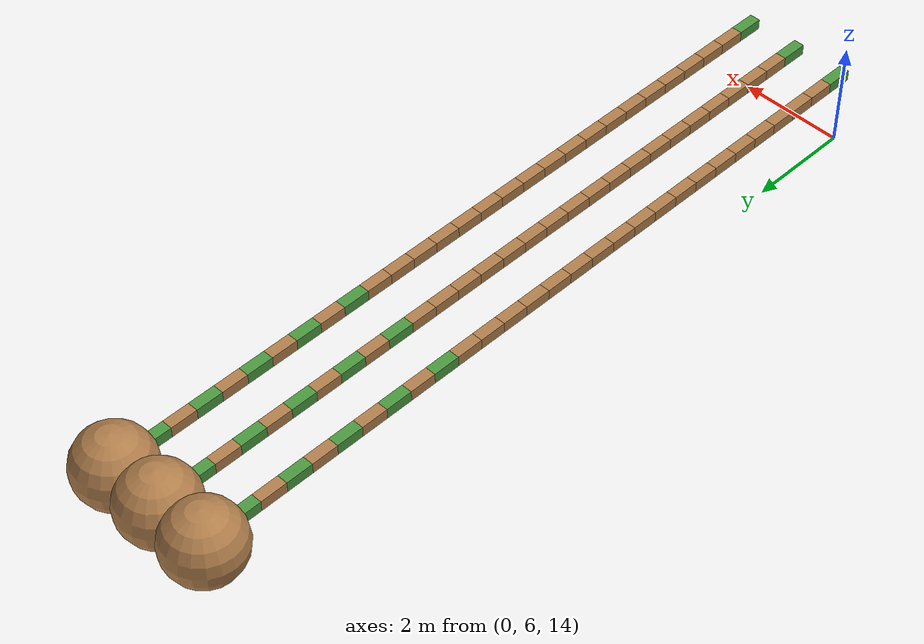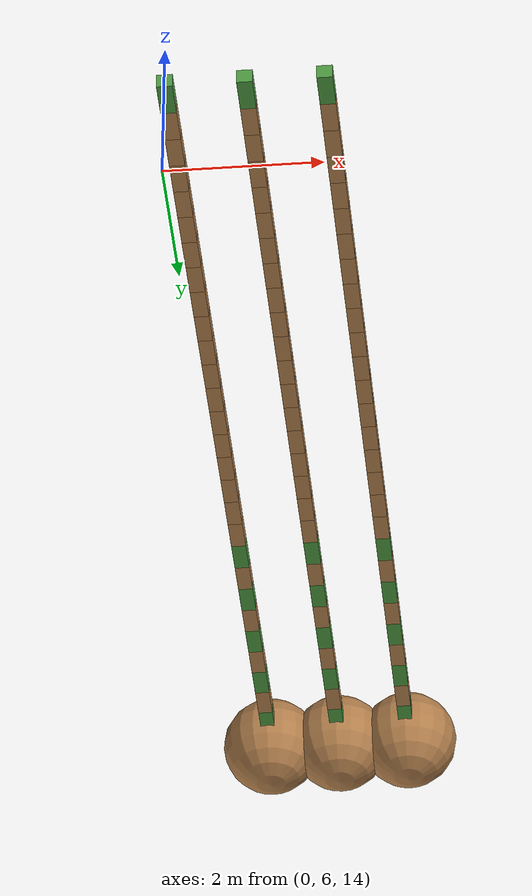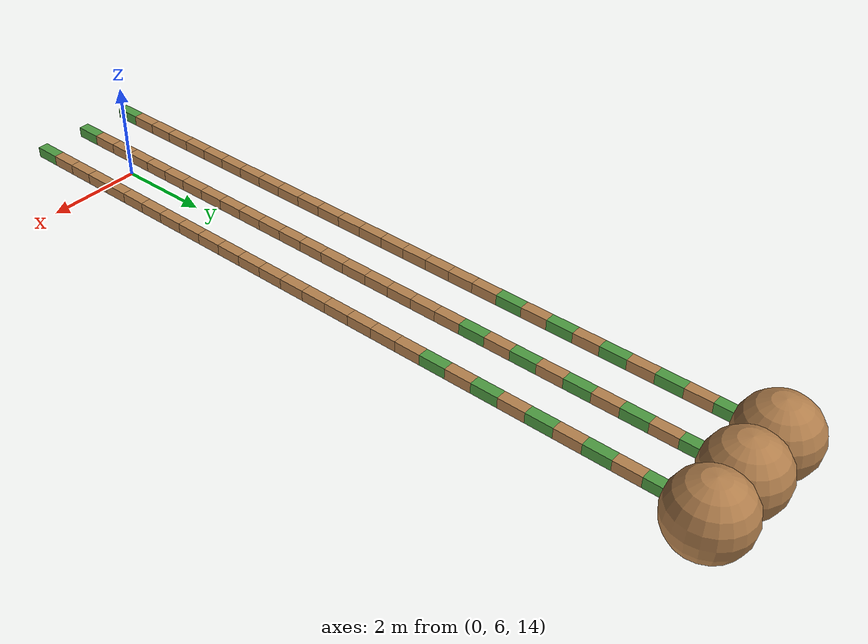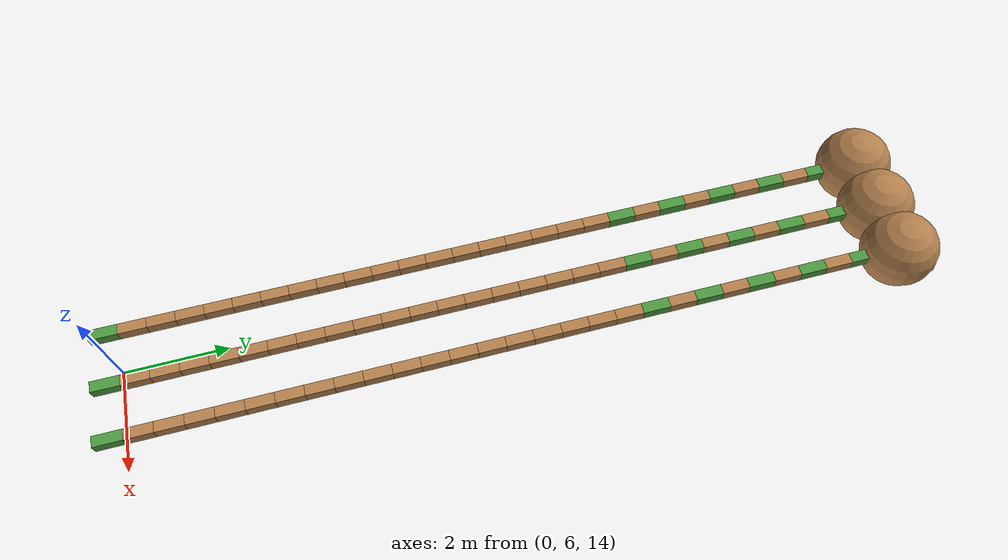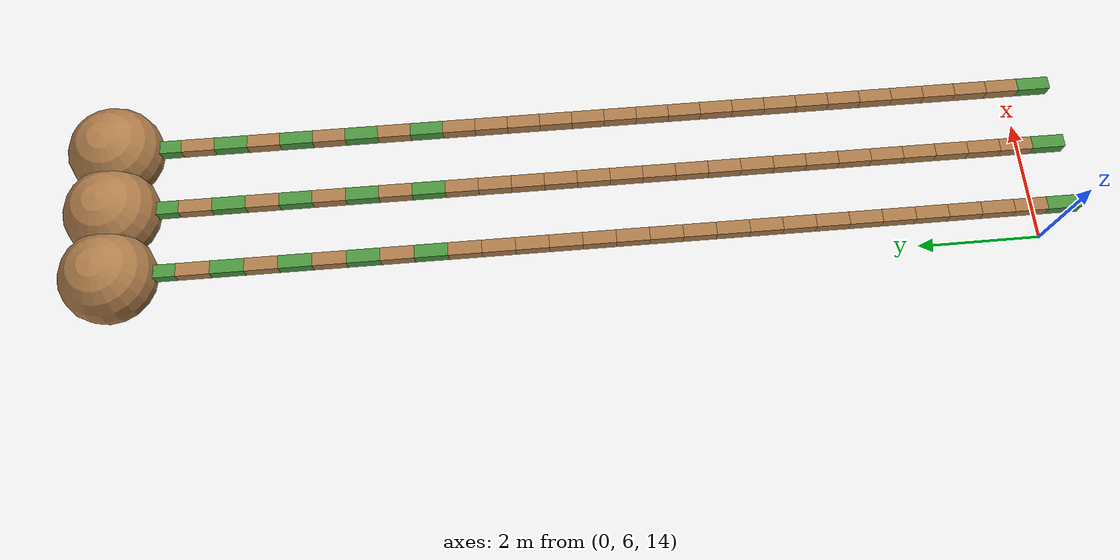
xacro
<?xml version="1.0"?>
<robot name="pendulum"
       xmlns:xi="http://www.w3.org/2001/XInclude"
       xmlns:gazebo="http://playerstage.sourceforge.net/gazebo/xmlschema/#gz"
       xmlns:model="http://playerstage.sourceforge.net/gazebo/xmlschema/#model"
       xmlns:sensor="http://playerstage.sourceforge.net/gazebo/xmlschema/#sensor"
       xmlns:body="http://playerstage.sourceforge.net/gazebo/xmlschema/#body"
       xmlns:geom="http://playerstage.sourceforge.net/gazebo/xmlschema/#geom"
       xmlns:joint="http://playerstage.sourceforge.net/gazebo/xmlschema/#joint"
       xmlns:interface="http://playerstage.sourceforge.net/gazebo/xmlschema/#interface"
       xmlns:rendering="http://playerstage.sourceforge.net/gazebo/xmlschema/#rendering"
       xmlns:renderable="http://playerstage.sourceforge.net/gazebo/xmlschema/#renderable"
       xmlns:controller="http://playerstage.sourceforge.net/gazebo/xmlschema/#controller"
       xmlns:xacro="http://ros.org/wiki/xacro"
       xmlns:physics="http://playerstage.sourceforge.net/gazebo/xmlschema/#physics">

  <link name="world"/>
  <!--
     A pendulum constructed from single continuous link and a mass with some moment of inertia
  -->
  <xacro:macro name="one_sphere" params="link_name parent *axis *origin material">
    <joint name="${link_name}_joint" type="continuous" >
      <insert_block name="origin"/>
      <insert_block name="axis"/>
      <parent link="${parent}" />
      <child link="${link_name}" />
      <dynamics damping="0.0" />
    </joint>
    <link name="${link_name}">
      <inertial>
	<mass value="1500.0" />
	<!-- center of mass (com) is defined w.r.t. link local coordinate system -->
	<origin xyz="0 0 0" />
	<inertia  ixx="1.0" ixy="0.0"  ixz="0.0"  iyy="100.0"  iyz="0.0"  izz="1.0" />
      </inertial>
      <visual>
	<!-- visual origin is defined w.r.t. link local coordinate system -->
	<origin xyz="0 0 0" rpy="0 0 0" />
	<geometry>
          <sphere radius="0.7" />
	</geometry>
      </visual>
      <collision>
	<!-- collision origin is defined w.r.t. link local coordinate system -->
	<origin xyz="0 0 0" rpy="0 0 0" />
	<geometry>
          <sphere radius="0.7" />
	</geometry>
      </collision>
    </link>
    <gazebo reference="${link_name}">
      <material>${material}</material>
      <turnGravityOff>false</turnGravityOff>
    </gazebo>
  </xacro:macro>

  <xacro:macro name="one_link" params="link_name parent *axis *origin material">
    <joint name="${link_name}_joint" type="continuous" >
      <insert_block name="origin"/>
      <insert_block name="axis"/>
      <parent link="${parent}" />
      <child link="${link_name}" />
      <dynamics damping="0.0" />
    </joint>
    <link name="${link_name}">
      <inertial >
        <mass value="1.0" />
        <origin xyz="0 0.5 0" />
        <inertia  ixx="0.0" ixy="0.0"  ixz="0.0"  iyy="0.0"  iyz="0.0"  izz="0.0" />
      </inertial>
      <visual >
        <origin xyz="0 0.25 0" rpy="0 0 0" />
        <geometry>
          <box size="0.2 0.5 0.2" />
        </geometry>
      </visual>
      <collision >
        <origin xyz="0 0.15 0" rpy="0 0 0" />
        <geometry>
          <box size="0.2 0.5 0.2" />
        </geometry>
      </collision>
    </link>
    <gazebo reference="${link_name}">
      <material>${material}</material>
      <turnGravityOff>false</turnGravityOff>
    </gazebo>
  </xacro:macro>

  <xacro:macro name="pendulum" params="chain_num x_offset">
    <xacro:one_link link_name="link1_${chain_num}" parent="world" material="Gazebo/GrassFloor">
      <origin xyz="${x_offset} 6 15.5" rpy="0 0 0"/>
      <axis xyz="1 0 0" />
    </xacro:one_link>
    <xacro:one_link link_name="link2_${chain_num}" parent="link1_${chain_num}" material="Gazebo/LightWood">
      <origin xyz="0 0.5 0" rpy="0 0 0"/>
      <axis xyz="1 0 0" />
    </xacro:one_link>
    <xacro:one_link link_name="link3_${chain_num}" parent="link2_${chain_num}" material="Gazebo/LightWood">
      <origin xyz="0 0.5 0" rpy="0 0 0"/>
      <axis xyz="1 0 0" />
    </xacro:one_link>
    <xacro:one_link link_name="link4_${chain_num}" parent="link3_${chain_num}" material="Gazebo/LightWood">
      <origin xyz="0 0.5 0" rpy="0 0 0"/>
      <axis xyz="1 0 0" />
    </xacro:one_link>
    <xacro:one_link link_name="link5_${chain_num}" parent="link4_${chain_num}" material="Gazebo/LightWood">
      <origin xyz="0 0.5 0" rpy="0 0 0"/>
      <axis xyz="1 0 0" />
    </xacro:one_link>
    <xacro:one_link link_name="link6_${chain_num}" parent="link5_${chain_num}" material="Gazebo/LightWood">
      <origin xyz="0 0.5 0" rpy="0 0 0"/>
      <axis xyz="1 0 0" />
    </xacro:one_link>
    <xacro:one_link link_name="link7_${chain_num}" parent="link6_${chain_num}" material="Gazebo/LightWood">
      <origin xyz="0 0.5 0" rpy="0 0 0"/>
      <axis xyz="1 0 0" />
    </xacro:one_link>
    <xacro:one_link link_name="link8_${chain_num}" parent="link7_${chain_num}" material="Gazebo/LightWood">
      <origin xyz="0 0.5 0" rpy="0 0 0"/>
      <axis xyz="1 0 0" />
    </xacro:one_link>
    <xacro:one_link link_name="link9_${chain_num}" parent="link8_${chain_num}" material="Gazebo/LightWood">
      <origin xyz="0 0.5 0" rpy="0 0 0"/>
      <axis xyz="1 0 0" />
    </xacro:one_link>
    <xacro:one_link link_name="link10_${chain_num}" parent="link9_${chain_num}" material="Gazebo/LightWood">
      <origin xyz="0 0.5 0" rpy="0 0 0"/>
      <axis xyz="1 0 0" />
    </xacro:one_link>
    <xacro:one_link link_name="link11_${chain_num}" parent="link10_${chain_num}" material="Gazebo/LightWood">
      <origin xyz="0 0.5 0" rpy="0 0 0"/>
      <axis xyz="1 0 0" />
    </xacro:one_link>
    <xacro:one_link link_name="link12_${chain_num}" parent="link11_${chain_num}" material="Gazebo/LightWood">
      <origin xyz="0 0.5 0" rpy="0 0 0"/>
      <axis xyz="1 0 0" />
    </xacro:one_link>
    <xacro:one_link link_name="link13_${chain_num}" parent="link12_${chain_num}" material="Gazebo/LightWood">
      <origin xyz="0 0.5 0" rpy="0 0 0"/>
      <axis xyz="1 0 0" />
    </xacro:one_link>
    <xacro:one_link link_name="link14_${chain_num}" parent="link13_${chain_num}" material="Gazebo/LightWood">
      <origin xyz="0 0.5 0" rpy="0 0 0"/>
      <axis xyz="1 0 0" />
    </xacro:one_link>
    <xacro:one_link link_name="link15_${chain_num}" parent="link14_${chain_num}" material="Gazebo/LightWood">
      <origin xyz="0 0.5 0" rpy="0 0 0"/>
      <axis xyz="1 0 0" />
    </xacro:one_link>
    <xacro:one_link link_name="link16_${chain_num}" parent="link15_${chain_num}" material="Gazebo/LightWood">
      <origin xyz="0 0.5 0" rpy="0 0 0"/>
      <axis xyz="1 0 0" />
    </xacro:one_link>
    <xacro:one_link link_name="link17_${chain_num}" parent="link16_${chain_num}" material="Gazebo/LightWood">
      <origin xyz="0 0.5 0" rpy="0 0 0"/>
      <axis xyz="1 0 0" />
    </xacro:one_link>
    <xacro:one_link link_name="link18_${chain_num}" parent="link17_${chain_num}" material="Gazebo/LightWood">
      <origin xyz="0 0.5 0" rpy="0 0 0"/>
      <axis xyz="1 0 0" />
    </xacro:one_link>
    <xacro:one_link link_name="link19_${chain_num}" parent="link18_${chain_num}" material="Gazebo/LightWood">
      <origin xyz="0 0.5 0" rpy="0 0 0"/>
      <axis xyz="1 0 0" />
    </xacro:one_link>
    <xacro:one_link link_name="link20_${chain_num}" parent="link19_${chain_num}" material="Gazebo/GrassFloor">
      <origin xyz="0 0.5 0" rpy="0 0 0"/>
      <axis xyz="1 0 0" />
    </xacro:one_link>
    <xacro:one_link link_name="link21_${chain_num}" parent="link20_${chain_num}" material="Gazebo/LightWood">
      <origin xyz="0 0.5 0" rpy="0 0 0"/>
      <axis xyz="1 0 0" />
    </xacro:one_link>
    <xacro:one_link link_name="link22_${chain_num}" parent="link21_${chain_num}" material="Gazebo/GrassFloor">
      <origin xyz="0 0.5 0" rpy="0 0 0"/>
      <axis xyz="1 0 0" />
    </xacro:one_link>
    <xacro:one_link link_name="link23_${chain_num}" parent="link22_${chain_num}" material="Gazebo/LightWood">
      <origin xyz="0 0.5 0" rpy="0 0 0"/>
      <axis xyz="1 0 0" />
    </xacro:one_link>
    <xacro:one_link link_name="link24_${chain_num}" parent="link23_${chain_num}" material="Gazebo/GrassFloor">
      <origin xyz="0 0.5 0" rpy="0 0 0"/>
      <axis xyz="1 0 0" />
    </xacro:one_link>
    <xacro:one_link link_name="link25_${chain_num}" parent="link24_${chain_num}" material="Gazebo/LightWood">
      <origin xyz="0 0.5 0" rpy="0 0 0"/>
      <axis xyz="1 0 0" />
    </xacro:one_link>
    <xacro:one_link link_name="link26_${chain_num}" parent="link25_${chain_num}" material="Gazebo/GrassFloor">
      <origin xyz="0 0.5 0" rpy="0 0 0"/>
      <axis xyz="1 0 0" />
    </xacro:one_link>
    <xacro:one_link link_name="link27_${chain_num}" parent="link26_${chain_num}" material="Gazebo/LightWood">
      <origin xyz="0 0.5 0" rpy="0 0 0"/>
      <axis xyz="1 0 0" />
    </xacro:one_link>
    <xacro:one_link link_name="link28_${chain_num}" parent="link27_${chain_num}" material="Gazebo/GrassFloor">
      <origin xyz="0 0.5 0" rpy="0 0 0"/>
      <axis xyz="1 0 0" />
    </xacro:one_link>
    <xacro:one_link link_name="link29_${chain_num}" parent="link28_${chain_num}" material="Gazebo/LightWood">
      <origin xyz="0 0.5 0" rpy="0 0 0"/>
      <axis xyz="1 0 0" />
    </xacro:one_link>
    <xacro:one_sphere link_name="link30_${chain_num}" parent="link29_${chain_num}" material="Gazebo/LightWood">
      <origin xyz="0 0.5 0" rpy="0 0 0"/>
      <axis xyz="1 0 0" />
    </xacro:one_sphere>
  </xacro:macro>

  <xacro:pendulum x_offset="0" chain_num="0" />
  <xacro:pendulum x_offset="1" chain_num="1" />
  <xacro:pendulum x_offset="2" chain_num="2" />

</robot>
